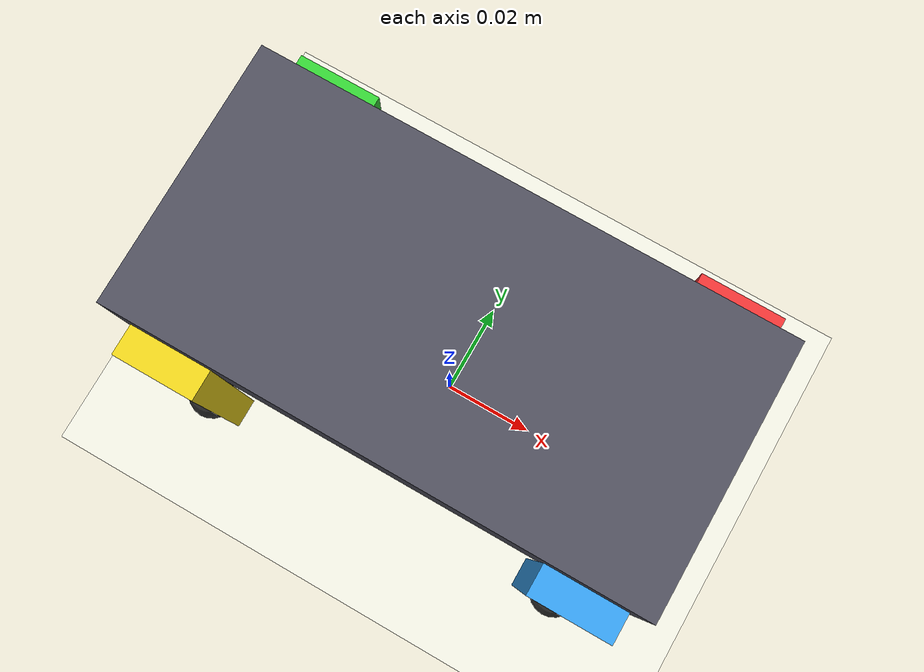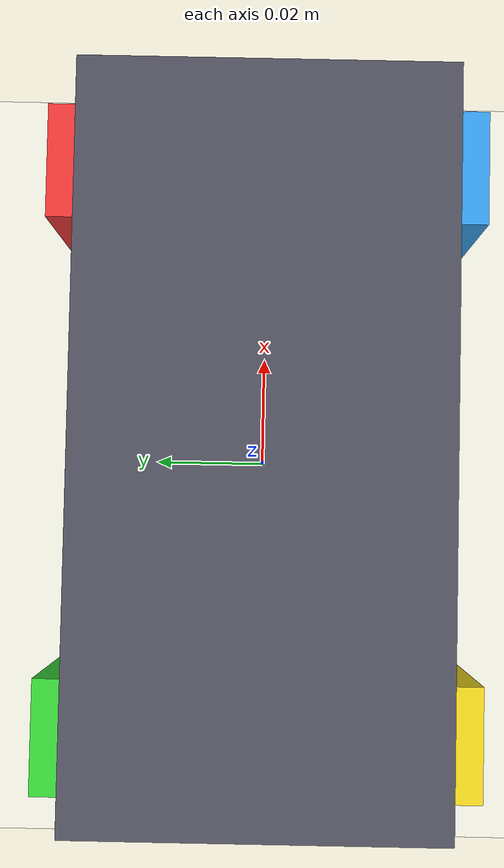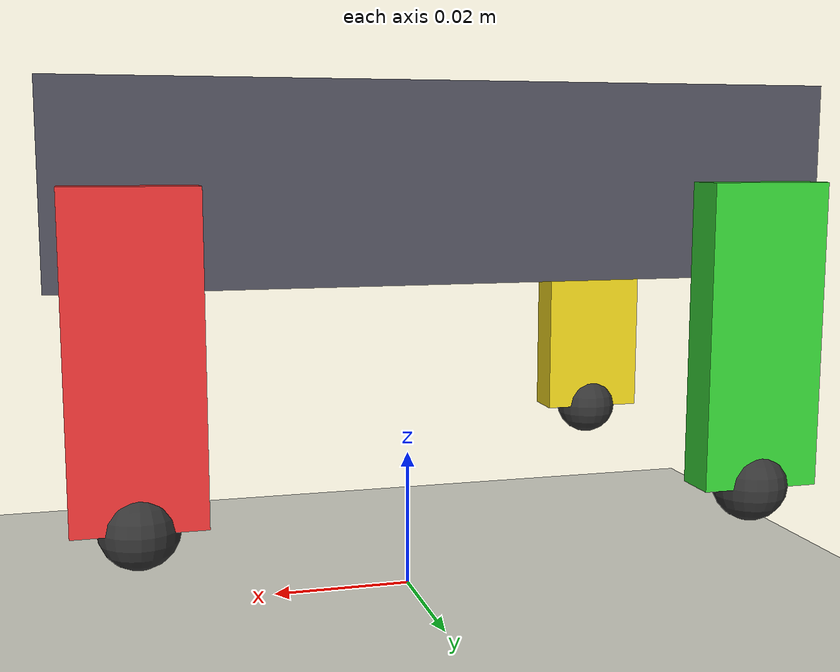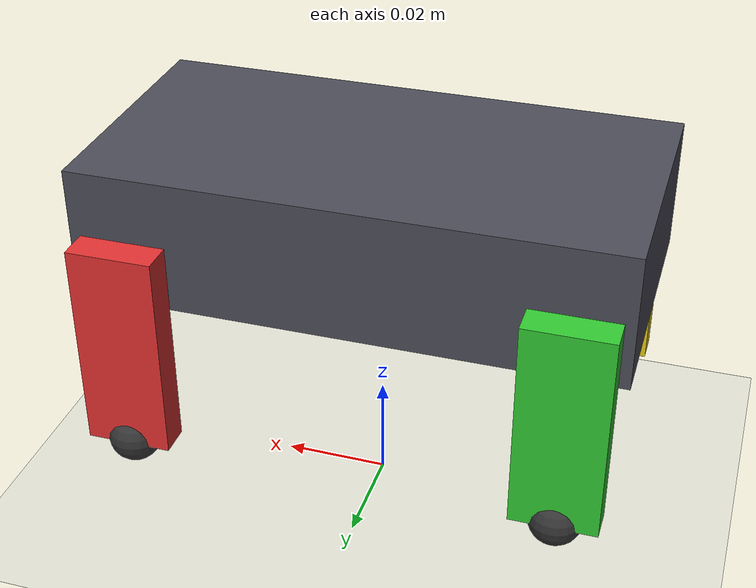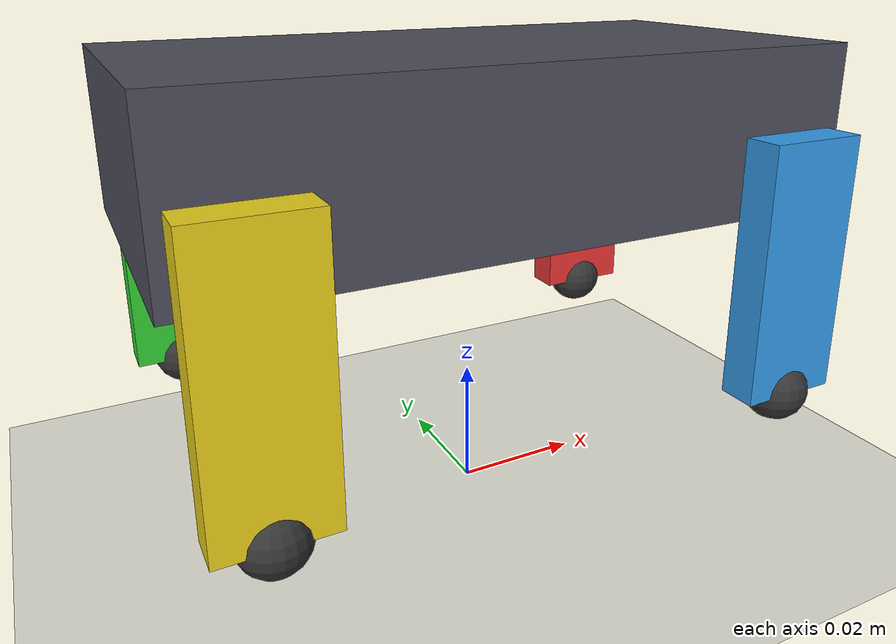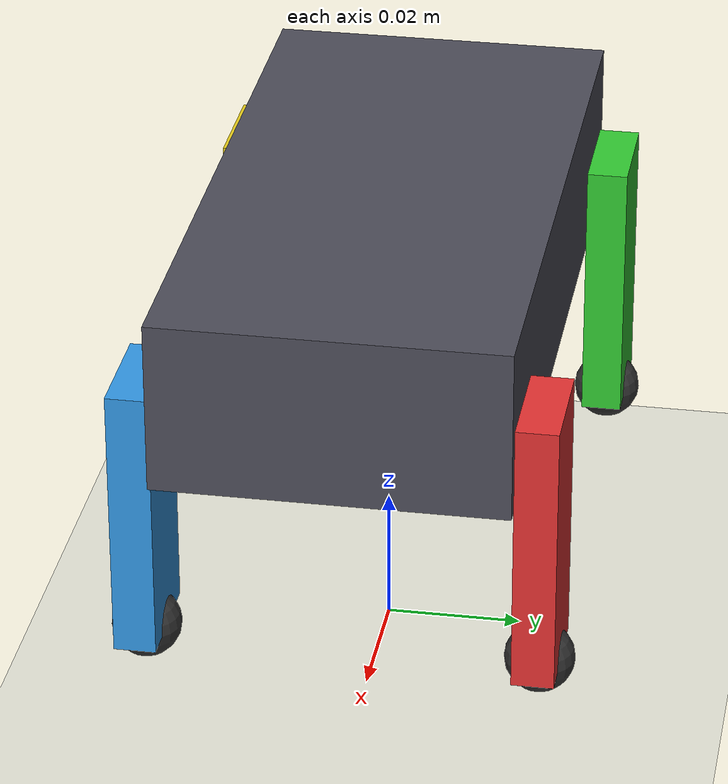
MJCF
<mujoco model="toy_dog">

  <!--
    COMPILER SETTINGS
    - angle="degree": lets us specify joint limits in degrees instead of radians
    - autolimits="true": if a joint has a range, MuJoCo auto-enables the limit
  -->
  <compiler angle="degree" autolimits="true"/>

  <option timestep="0.002" gravity="0 0 -9.81"/>

  <default>
    <joint damping="0.02" armature="0.01"/>
    <geom friction="0.8 0.005 0.001" condim="3"/>
    <motor ctrllimited="true" ctrlrange="-1 1"/>
  </default>

  <!--
    ASSETS
    We define materials here so we can color things meaningfully.
  -->
  <asset>
    <material name="body_mat" rgba="0.3 0.3 0.35 1"/>
    <material name="leg_mat" rgba="0.8 0.4 0.2 1"/>
    <material name="leg_fl_mat" rgba="0.9 0.2 0.2 1"/>  <!-- FL = red -->
    <material name="leg_fr_mat" rgba="0.2 0.6 0.9 1"/>  <!-- FR = blue -->
    <material name="leg_rl_mat" rgba="0.2 0.8 0.2 1"/>  <!-- RL = green -->
    <material name="leg_rr_mat" rgba="0.9 0.8 0.1 1"/>  <!-- RR = yellow -->
    <material name="foot_mat" rgba="0.2 0.2 0.2 1"/>
    <material name="ground_mat" rgba="0.9 0.9 0.85 1"/>
  </asset>

  <!--
    WORLDBODY
    Everything physical lives here. The hierarchy matters:
    body → (geom + joint + child bodies)

    A body's position/orientation is relative to its parent.
  -->
  <worldbody>
    <!-- Ground plane. The robot needs something to walk on. -->
    <geom name="floor" type="plane" size="2 2 0.1" material="ground_mat"/>

    <!--
      Light so we can see things in the viewer.
      diffuse/specular control brightness.
    -->
    <light pos="0 0 1.5" dir="0 0 -1" diffuse="0.8 0.8 0.8" specular="0.3 0.3 0.3"/>

    <body name="torso" pos="0 0 0.06">
      <!--
        freejoint: the torso floats freely in space (6 DOF).
        This is what makes it a mobile robot vs a fixed arm.
        Without this, the body would be welded to the world.
      -->
      <freejoint name="root"/>

      <!-- Inertial properties. mass + diagonal inertia tensor. -->
      <inertial pos="0 0 0" mass="0.10"
                diaginertia="0.00002 0.00005 0.00005"/>

      <!-- Visual body shape -->
      <geom name="torso_geom" type="box" size="0.05 0.025 0.0125"
            material="body_mat"/>

      <site name="imu_site" pos="0 0 0" size="0.005"/>

      <body name="leg_fl" pos="0.04 0.028 0">
        <joint name="joint_fl" type="hinge" axis="0 1 0"/>
        <inertial pos="0 0 -0.02" mass="0.008"
                  diaginertia="0.0000005 0.0000005 0.0000001"/>
        <geom name="leg_fl_geom" type="box" size="0.008 0.003 0.02"
              pos="0 0 -0.02" material="leg_fl_mat"/>
        <geom name="foot_fl" type="sphere" size="0.005"
              pos="0 0 -0.04" material="foot_mat"
              friction="1.0 0.005 0.001"/>
      </body>

      <!-- FRONT-RIGHT LEG (mirror of FL across Y axis) -->
      <body name="leg_fr" pos="0.04 -0.028 0">
        <joint name="joint_fr" type="hinge" axis="0 1 0"/>
        <inertial pos="0 0 -0.02" mass="0.008"
                  diaginertia="0.0000005 0.0000005 0.0000001"/>
        <geom name="leg_fr_geom" type="box" size="0.008 0.003 0.02"
              pos="0 0 -0.02" material="leg_fr_mat"/>
        <geom name="foot_fr" type="sphere" size="0.005"
              pos="0 0 -0.04" material="foot_mat"
              friction="1.0 0.005 0.001"/>
      </body>

      <!-- REAR-LEFT LEG -->
      <body name="leg_rl" pos="-0.04 0.028 0">
        <joint name="joint_rl" type="hinge" axis="0 1 0"/>
        <inertial pos="0 0 -0.02" mass="0.008"
                  diaginertia="0.0000005 0.0000005 0.0000001"/>
        <geom name="leg_rl_geom" type="box" size="0.008 0.003 0.02"
              pos="0 0 -0.02" material="leg_rl_mat"/>
        <geom name="foot_rl" type="sphere" size="0.005"
              pos="0 0 -0.04" material="foot_mat"
              friction="1.0 0.005 0.001"/>
      </body>

      <!-- REAR-RIGHT LEG -->
      <body name="leg_rr" pos="-0.04 -0.028 0">
        <joint name="joint_rr" type="hinge" axis="0 1 0"/>
        <inertial pos="0 0 -0.02" mass="0.008"
                  diaginertia="0.0000005 0.0000005 0.0000001"/>
        <geom name="leg_rr_geom" type="box" size="0.008 0.003 0.02"
              pos="0 0 -0.02" material="leg_rr_mat"/>
        <geom name="foot_rr" type="sphere" size="0.005"
              pos="0 0 -0.04" material="foot_mat"
              friction="1.0 0.005 0.001"/>
      </body>

    </body>
  </worldbody>

  <actuator>
    <motor name="motor_fl" joint="joint_fl" gear="0.1"/>
    <motor name="motor_fr" joint="joint_fr" gear="0.1"/>
    <motor name="motor_rl" joint="joint_rl" gear="0.1"/>
    <motor name="motor_rr" joint="joint_rr" gear="0.1"/>
  </actuator>

  <sensor>
    <jointpos name="pos_fl" joint="joint_fl"/>
    <jointpos name="pos_fr" joint="joint_fr"/>
    <jointpos name="pos_rl" joint="joint_rl"/>
    <jointpos name="pos_rr" joint="joint_rr"/>

    <jointvel name="vel_fl" joint="joint_fl"/>
    <jointvel name="vel_fr" joint="joint_fr"/>
    <jointvel name="vel_rl" joint="joint_rl"/>
    <jointvel name="vel_rr" joint="joint_rr"/>

    <gyro name="body_gyro" site="imu_site"/>
    <accelerometer name="body_acc" site="imu_site"/>

    <!-- Orientation for reward computation / logging -->
    <framequat name="body_quat" objtype="body" objname="torso"/>
  </sensor>

</mujoco>
